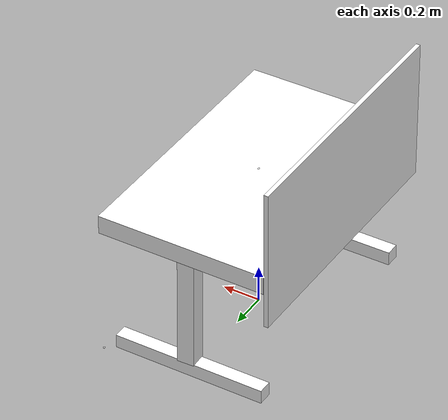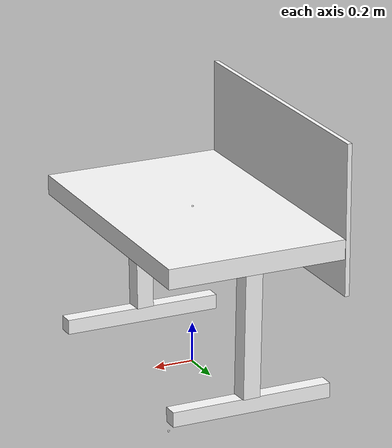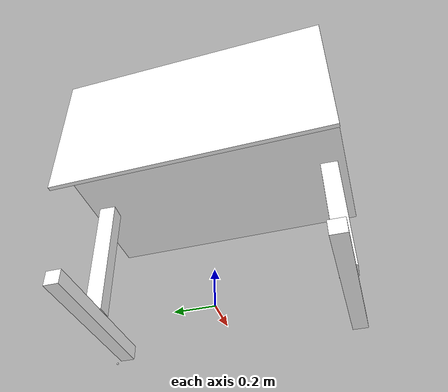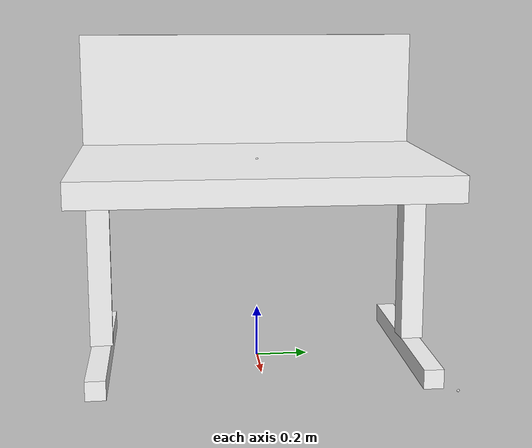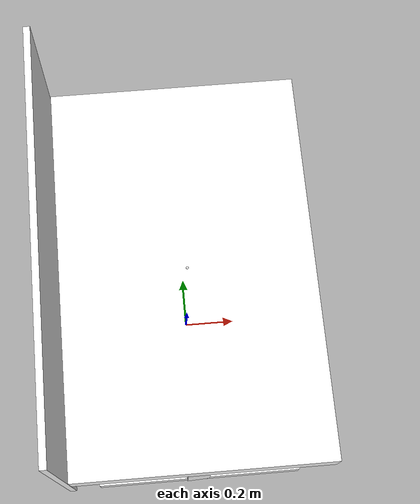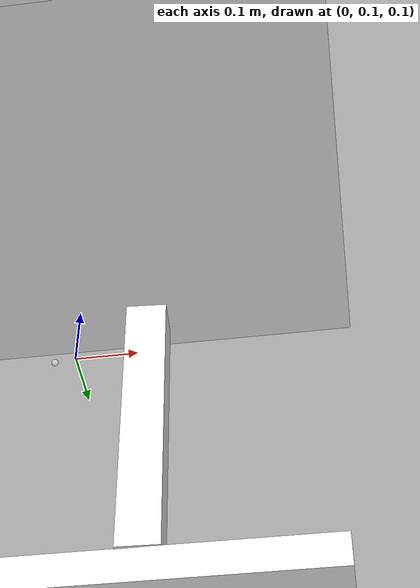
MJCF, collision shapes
<mujoco model="factory_ergo_table">
  <default>
    <default class="visual">
      <geom group="1" type="mesh" contype="0" conaffinity="0" density="100"/>
    </default>
    <default class="collision">
      <geom group="0" type="mesh" density="100" solimp="0.95 0.98 0.001" solref="0.004 1" rgba="1 1 1 0.25"/>
    </default>
  </default>
  <asset>
    <material name="Frosted_Glass" specular="1.0" shininess="0.555709412" rgba="1.000000 1.000000 1.000000 0.200000"/>
    <material name="Metal_White_Paint" specular="1.0" shininess="0.2" rgba="1.000000 1.000000 1.000000 1.000000"/>
    <material name="Pristine_Metal_Chrome_Grain" specular="1.0" shininess="0.489783325" rgba="1.000000 1.000000 1.000000 1.000000"/>
    <texture type="2d" name="Rubber_Smooth_BaseColor" file="textures/Rubber_Smooth_BaseColor.png"/>
    <material name="Rubber_Smooth" texture="Rubber_Smooth_BaseColor" specular="1.0" shininess="0.2"/>
    <mesh file="meshes/ergo_table_0.obj" name="ergo_table_0"/>
    <mesh file="meshes/ergo_table_1.obj" name="ergo_table_1"/>
    <mesh file="meshes/ergo_table_2.obj" name="ergo_table_2"/>
    <mesh file="meshes/ergo_table_3.obj" name="ergo_table_3"/>
  </asset>
  <worldbody>
    <body>
      <body name="object">
        <geom mesh="ergo_table_0" material="Pristine_Metal_Chrome_Grain" class="visual"/>
        <geom mesh="ergo_table_1" material="Rubber_Smooth" class="visual"/>
        <geom mesh="ergo_table_2" material="Frosted_Glass" class="visual"/>
        <geom mesh="ergo_table_3" material="Metal_White_Paint" class="visual"/>
        <geom type="box" pos="-0.46350255976259347 -4.682526400941819e-07 0.8896096217538708" size="0.011364070261604131 0.37569603292537185 0.7069133795042581" quat="0.7071067710735451 -0.7071067655177742 0.00011959073877681259 0.00014885896529341037" class="collision"/>
        <geom type="box" pos="-0.004822535916103561 -0.6211251573931159 0.3846578459579856" size="0.04430337999982359 0.044504896722269933 0.31861118100626284" quat="0.689689685988698 0.004585655900224514 0.0048142762301561495 0.7240745345233154" class="collision"/>
        <geom type="box" pos="-0.0002115116289263922 -0.6200129459885813 0.029424661532591875" size="0.037210579921073156 0.0383342790206358 0.40751512541875856" quat="0.707098811355153 0.003357228042582875 -0.7071032414048263 -0.00223740805129307" class="collision"/>
        <geom type="box" pos="0 0 0.75" size="0.45 0.7075615 0.0495" class="collision"/>
        <geom type="box" pos="0.004638961193049215 0.6212950268168259 0.3845092245226624" size="0.04429060637176996 0.04449042285275407 0.31888412967723156" quat="0.7259966413143332 0.005746945121697842 -0.005443416722616946 -0.687652687507625" class="collision"/>
        <geom type="box" pos="-0.00020491564036606254 0.619985973649615 0.02919114999999999" size="0.03688394 0.03789126822471811 0.4075007709955647" quat="0.7071067567665855 -0.00018583605895029987 0.7071067567665855 0.00018583605895034289" class="collision"/>
      </body>
      <site name="bottom_site" pos="0 0 0.0" rgba="1 1 1 0.5" size="0.005"/>
      <site name="top_site" pos="0 0 0.8" rgba="1 1 1 0.5" size="0.005"/>
      <site name="horizontal_radius_site" pos="0.45 0.7 0" rgba="1 1 1 0.5" size="0.005"/>
    </body>
  </worldbody>
</mujoco>
